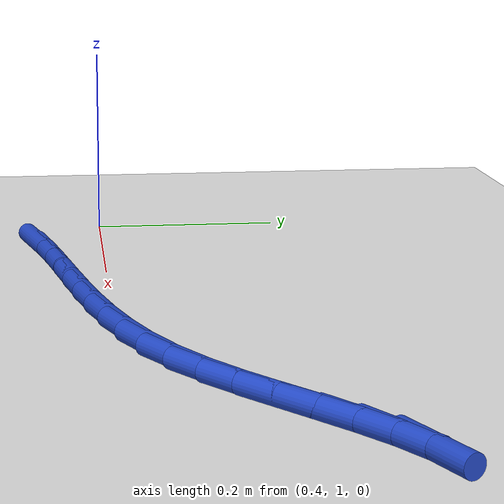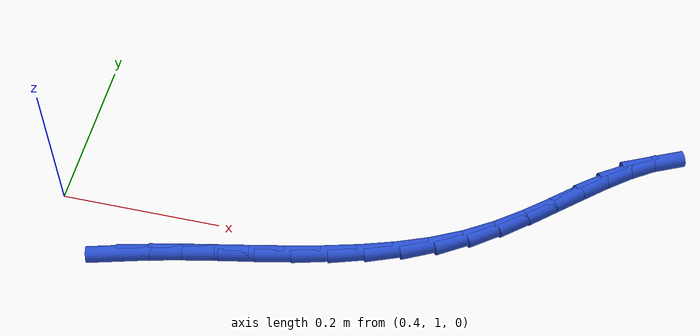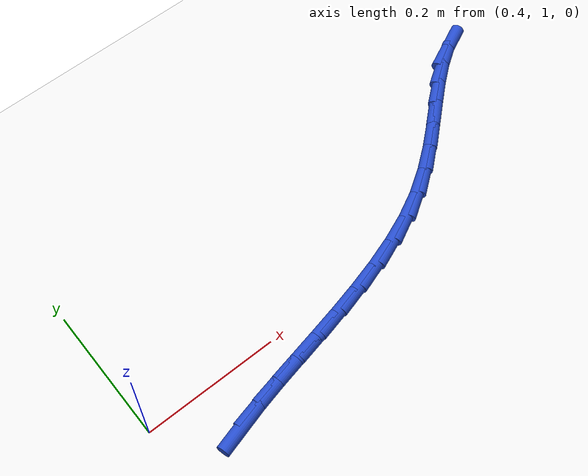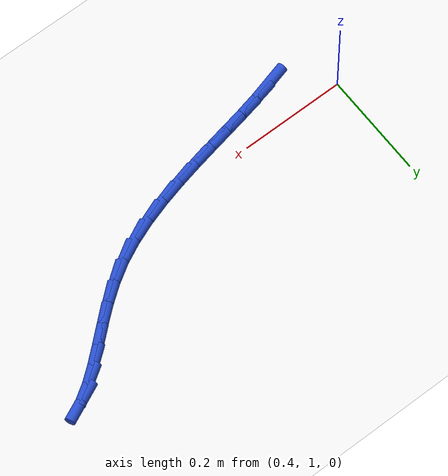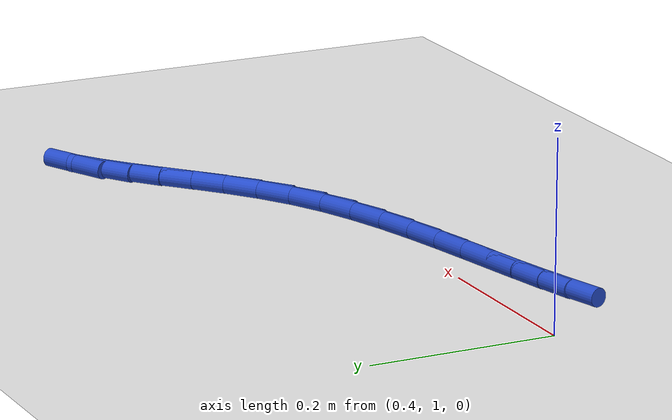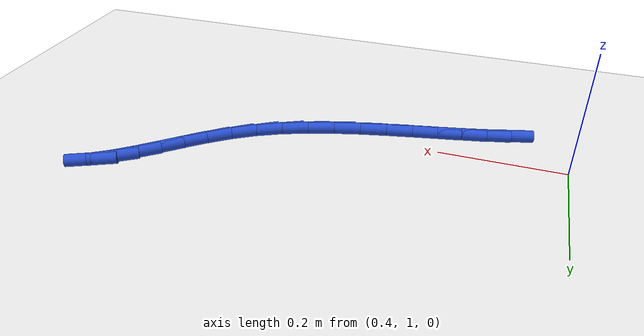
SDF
<sdf version="1.6">
 <world name="default">
  <model name="ground_plane">
   <static>1</static>
   <link name="link">
    <collision name="collision">
     <geometry><plane><normal>0 0 1</normal><size>100 100</size></plane></geometry>
     <surface><friction><ode><mu>100</mu><mu2>50</mu2></ode></friction></surface>
    </collision>
    <visual name="visual">
     <cast_shadows>0</cast_shadows>
     <geometry><plane><normal>0 0 1</normal><size>100 100</size></plane></geometry>
     <material>
      <script><uri>file://media/materials/scripts/gazebo.material</uri><name>Gazebo/WhiteGlow</name></script>
     </material>
    </visual>
   </link>
  </model>
  <model name="line">
   <link name="link_35">
    <pose>0.49625310750022267 0.9290256527799192 0.01 0 1.57 0.2671980473761101</pose>
    <collision name="collision">
     <geometry><cylinder><radius>0.01</radius><length>0.08</length></cylinder></geometry>
    </collision>
    <visual name="visual">
     <material>
      <script><name>Gazebo/Blue</name><uri>file://media/materials/scripts/gazebo.material</uri></script>
     </material>
     <geometry><cylinder><radius>0.01</radius><length>0.08</length></cylinder></geometry>
    </visual>
   </link>
   <link name="link_36">
    <pose>0.5316458081079795 0.9387141885713629 0.01 0 1.57 0.22617989518240167</pose>
    <collision name="collision">
     <geometry><cylinder><radius>0.01</radius><length>0.08</length></cylinder></geometry>
    </collision>
    <visual name="visual">
     <material>
      <script><name>Gazebo/Blue</name><uri>file://media/materials/scripts/gazebo.material</uri></script>
     </material>
     <geometry><cylinder><radius>0.01</radius><length>0.08</length></cylinder></geometry>
    </visual>
   </link>
   <link name="link_37">
    <pose>0.5698382956135398 0.94750294483675 0.01 0 1.57 0.20435497722791757</pose>
    <collision name="collision">
     <geometry><cylinder><radius>0.01</radius><length>0.08</length></cylinder></geometry>
    </collision>
    <visual name="visual">
     <material>
      <script><name>Gazebo/Blue</name><uri>file://media/materials/scripts/gazebo.material</uri></script>
     </material>
     <geometry><cylinder><radius>0.01</radius><length>0.08</length></cylinder></geometry>
    </visual>
   </link>
   <link name="link_38">
    <pose>0.6101960140386451 0.9558670012431036 0.01 0 1.57 0.1982391782111296</pose>
    <collision name="collision">
     <geometry><cylinder><radius>0.01</radius><length>0.08</length></cylinder></geometry>
    </collision>
    <visual name="visual">
     <material>
      <script><name>Gazebo/Blue</name><uri>file://media/materials/scripts/gazebo.material</uri></script>
     </material>
     <geometry><cylinder><radius>0.01</radius><length>0.08</length></cylinder></geometry>
    </visual>
   </link>
   <link name="link_39">
    <pose>0.6520844074050368 0.9642814374574471 0.01 0 1.57 0.20598794016074992</pose>
    <collision name="collision">
     <geometry><cylinder><radius>0.01</radius><length>0.08</length></cylinder></geometry>
    </collision>
    <visual name="visual">
     <material>
      <script><name>Gazebo/Blue</name><uri>file://media/materials/scripts/gazebo.material</uri></script>
     </material>
     <geometry><cylinder><radius>0.01</radius><length>0.08</length></cylinder></geometry>
    </visual>
   </link>
   <link name="link_40">
    <pose>0.6948689197344569 0.9732213331468029 0.01 0 1.57 0.22694717492236063</pose>
    <collision name="collision">
     <geometry><cylinder><radius>0.01</radius><length>0.08</length></cylinder></geometry>
    </collision>
    <visual name="visual">
     <material>
      <script><name>Gazebo/Blue</name><uri>file://media/materials/scripts/gazebo.material</uri></script>
     </material>
     <geometry><cylinder><radius>0.01</radius><length>0.08</length></cylinder></geometry>
    </visual>
   </link>
   <link name="link_41">
    <pose>0.7379149950486468 0.9831617679781944 0.01 0 1.57 0.26140219757968153</pose>
    <collision name="collision">
     <geometry><cylinder><radius>0.01</radius><length>0.08</length></cylinder></geometry>
    </collision>
    <visual name="visual">
     <material>
      <script><name>Gazebo/Blue</name><uri>file://media/materials/scripts/gazebo.material</uri></script>
     </material>
     <geometry><cylinder><radius>0.01</radius><length>0.08</length></cylinder></geometry>
    </visual>
   </link>
   <link name="link_42">
    <pose>0.780588077369348 0.9945778216186446 0.01 0 1.57 0.3104382364628737</pose>
    <collision name="collision">
     <geometry><cylinder><radius>0.01</radius><length>0.08</length></cylinder></geometry>
    </collision>
    <visual name="visual">
     <material>
      <script><name>Gazebo/Blue</name><uri>file://media/materials/scripts/gazebo.material</uri></script>
     </material>
     <geometry><cylinder><radius>0.01</radius><length>0.08</length></cylinder></geometry>
    </visual>
   </link>
   <link name="link_43">
    <pose>0.8222536107183026 1.0079445737351762 0.01 0 1.57 0.37582710529346797</pose>
    <collision name="collision">
     <geometry><cylinder><radius>0.01</radius><length>0.08</length></cylinder></geometry>
    </collision>
    <visual name="visual">
     <material>
      <script><name>Gazebo/Blue</name><uri>file://media/materials/scripts/gazebo.material</uri></script>
     </material>
     <geometry><cylinder><radius>0.01</radius><length>0.08</length></cylinder></geometry>
    </visual>
   </link>
   <link name="link_44">
    <pose>0.8622770391172518 1.0237371039948127 0.01 0 1.57 0.4598255329981359</pose>
    <collision name="collision">
     <geometry><cylinder><radius>0.01</radius><length>0.08</length></cylinder></geometry>
    </collision>
    <visual name="visual">
     <material>
      <script><name>Gazebo/Blue</name><uri>file://media/materials/scripts/gazebo.material</uri></script>
     </material>
     <geometry><cylinder><radius>0.01</radius><length>0.08</length></cylinder></geometry>
    </visual>
   </link>
   <link name="link_45">
    <pose>0.9000238065879372 1.0424304920645766 0.01 0 1.57 0.5593611234795564</pose>
    <collision name="collision">
     <geometry><cylinder><radius>0.01</radius><length>0.08</length></cylinder></geometry>
    </collision>
    <visual name="visual">
     <material>
      <script><name>Gazebo/Blue</name><uri>file://media/materials/scripts/gazebo.material</uri></script>
     </material>
     <geometry><cylinder><radius>0.01</radius><length>0.08</length></cylinder></geometry>
    </visual>
   </link>
   <link name="link_46">
    <pose>0.9349840197975766 1.0643176794510192 0.01 0 1.57 0.6427878481176166</pose>
    <collision name="collision">
     <geometry><cylinder><radius>0.01</radius><length>0.08</length></cylinder></geometry>
    </collision>
    <visual name="visual">
     <material>
      <script><name>Gazebo/Blue</name><uri>file://media/materials/scripts/gazebo.material</uri></script>
     </material>
     <geometry><cylinder><radius>0.01</radius><length>0.08</length></cylinder></geometry>
    </visual>
   </link>
   <link name="link_47">
    <pose>0.9673995603719717 1.0885932280496735 0.01 0 1.57 0.6970854625959797</pose>
    <collision name="collision">
     <geometry><cylinder><radius>0.01</radius><length>0.08</length></cylinder></geometry>
    </collision>
    <visual name="visual">
     <material>
      <script><name>Gazebo/Blue</name><uri>file://media/materials/scripts/gazebo.material</uri></script>
     </material>
     <geometry><cylinder><radius>0.01</radius><length>0.08</length></cylinder></geometry>
    </visual>
   </link>
   <link name="link_48">
    <pose>0.9977927330122429 1.114041988066598 0.01 0 1.57 0.7212600121073419</pose>
    <collision name="collision">
     <geometry><cylinder><radius>0.01</radius><length>0.08</length></cylinder></geometry>
    </collision>
    <visual name="visual">
     <material>
      <script><name>Gazebo/Blue</name><uri>file://media/materials/scripts/gazebo.material</uri></script>
     </material>
     <geometry><cylinder><radius>0.01</radius><length>0.08</length></cylinder></geometry>
    </visual>
   </link>
   <link name="link_49">
    <pose>1.0266863213653643 1.1394481099447684 0.01 0 1.57 0.7131302030304955</pose>
    <collision name="collision">
     <geometry><cylinder><radius>0.01</radius><length>0.08</length></cylinder></geometry>
    </collision>
    <visual name="visual">
     <material>
      <script><name>Gazebo/Blue</name><uri>file://media/materials/scripts/gazebo.material</uri></script>
     </material>
     <geometry><cylinder><radius>0.01</radius><length>0.08</length></cylinder></geometry>
    </visual>
   </link>
   <link name="link_50">
    <pose>1.0546031090783108 1.1635957441271612 0.01 0 1.57 0.6681135769106458</pose>
    <collision name="collision">
     <geometry><cylinder><radius>0.01</radius><length>0.08</length></cylinder></geometry>
    </collision>
    <visual name="visual">
     <material>
      <script><name>Gazebo/Blue</name><uri>file://media/materials/scripts/gazebo.material</uri></script>
     </material>
     <geometry><cylinder><radius>0.01</radius><length>0.08</length></cylinder></geometry>
    </visual>
   </link>
   <link name="link_51">
    <pose>1.0820658797980576 1.1852690410567528 0.01 0 1.57 0.5786090154069308</pose>
    <collision name="collision">
     <geometry><cylinder><radius>0.01</radius><length>0.08</length></cylinder></geometry>
    </collision>
    <visual name="visual">
     <material>
      <script><name>Gazebo/Blue</name><uri>file://media/materials/scripts/gazebo.material</uri></script>
     </material>
     <geometry><cylinder><radius>0.01</radius><length>0.08</length></cylinder></geometry>
    </visual>
   </link>
   <link name="link_52">
    <pose>1.1095974171715786 1.203252151176519 0.01 0 1.57 0.4352529361032434</pose>
    <collision name="collision">
     <geometry><cylinder><radius>0.01</radius><length>0.08</length></cylinder></geometry>
    </collision>
    <visual name="visual">
     <material>
      <script><name>Gazebo/Blue</name><uri>file://media/materials/scripts/gazebo.material</uri></script>
     </material>
     <geometry><cylinder><radius>0.01</radius><length>0.08</length></cylinder></geometry>
    </visual>
   </link>
  </model>
 </world>
</sdf>
